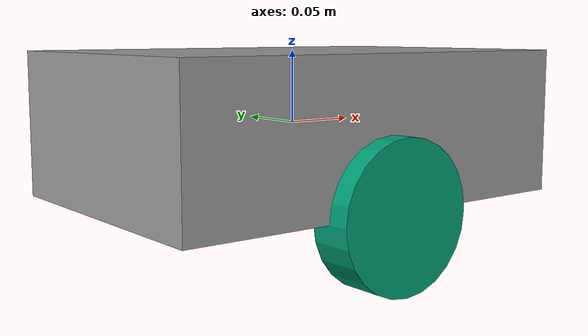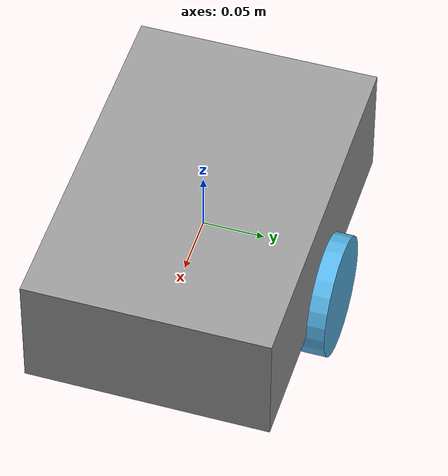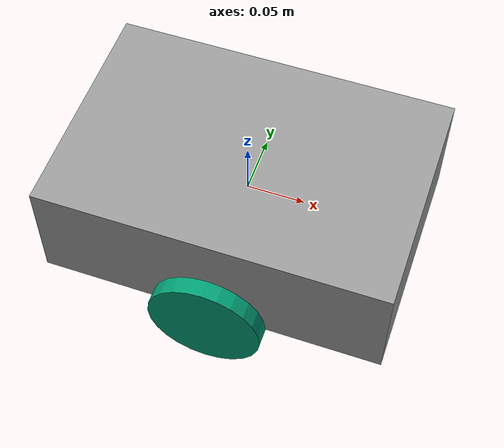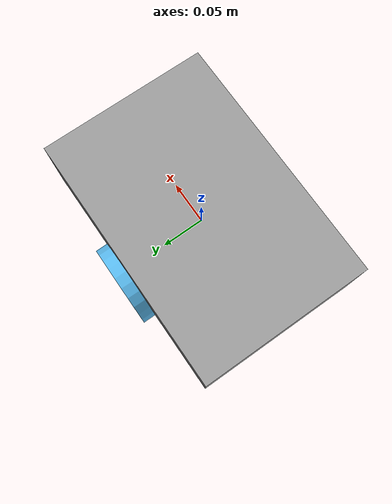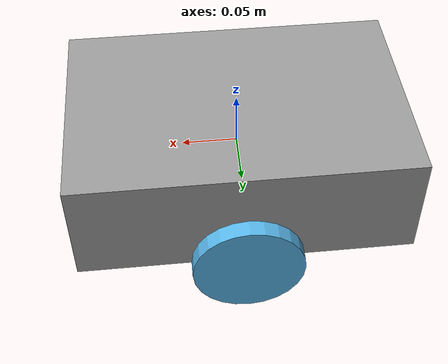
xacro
<?xml version="1.0"?>
<robot name="diff_bot" xmlns:xacro="http://www.ros.org/wiki/xacro">
  <xacro:arg name="use_ros2_control" default="false"/>
  <xacro:arg name="controllers_file" default="controllers.yaml"/>

  <link name="base_link">
    <visual>
      <geometry>
        <box size="0.30 0.20 0.10"/>
      </geometry>
      <material name="gray">
        <color rgba="0.6 0.6 0.6 1.0"/>
      </material>
    </visual>
    <collision>
      <geometry>
        <box size="0.30 0.20 0.10"/>
      </geometry>
    </collision>
    <inertial>
      <mass value="5.0"/>
      <origin xyz="0 0 0" rpy="0 0 0"/>
      <inertia ixx="0.020" ixy="0.0" ixz="0.0" iyy="0.040" iyz="0.0" izz="0.050"/>
    </inertial>
  </link>

  <link name="left_wheel_link">
    <visual>
      <origin xyz="0 0 0" rpy="1.5708 0 0"/>
      <geometry>
        <cylinder radius="0.05" length="0.03"/>
      </geometry>
    </visual>
    <collision>
      <origin xyz="0 0 0" rpy="1.5708 0 0"/>
      <geometry>
        <cylinder radius="0.05" length="0.03"/>
      </geometry>
    </collision>
    <inertial>
      <mass value="0.5"/>
      <origin xyz="0 0 0" rpy="0 0 0"/>
      <inertia ixx="0.001" ixy="0.0" ixz="0.0" iyy="0.001" iyz="0.0" izz="0.001"/>
    </inertial>
  </link>

  <link name="right_wheel_link">
    <visual>
      <origin xyz="0 0 0" rpy="1.5708 0 0"/>
      <geometry>
        <cylinder radius="0.05" length="0.03"/>
      </geometry>
    </visual>
    <collision>
      <origin xyz="0 0 0" rpy="1.5708 0 0"/>
      <geometry>
        <cylinder radius="0.05" length="0.03"/>
      </geometry>
    </collision>
    <inertial>
      <mass value="0.5"/>
      <origin xyz="0 0 0" rpy="0 0 0"/>
      <inertia ixx="0.001" ixy="0.0" ixz="0.0" iyy="0.001" iyz="0.0" izz="0.001"/>
    </inertial>
  </link>

  <joint name="left_wheel_joint" type="continuous">
    <parent link="base_link"/>
    <child link="left_wheel_link"/>
    <origin xyz="0.0 0.10 -0.05" rpy="0 0 0"/>
    <axis xyz="0 1 0"/>
  </joint>

  <joint name="right_wheel_joint" type="continuous">
    <parent link="base_link"/>
    <child link="right_wheel_link"/>
    <origin xyz="0.0 -0.10 -0.05" rpy="0 0 0"/>
    <axis xyz="0 1 0"/>
  </joint>

  <gazebo reference="base_link">
    <material>Gazebo/Gray</material>
  </gazebo>

  <xacro:if value="$(arg use_ros2_control)">
    <xacro:include filename="ros2_control.xacro"/>
    <xacro:ros2_control_system
      left_wheel_joint="left_wheel_joint"
      right_wheel_joint="right_wheel_joint"
      controllers_file="$(arg controllers_file)"/>
  </xacro:if>

  <xacro:unless value="$(arg use_ros2_control)">
    <xacro:include filename="gz_control.xacro"/>
    <xacro:gz_diff_drive
      left_wheel_joint="left_wheel_joint"
      right_wheel_joint="right_wheel_joint"
      odom_frame="odom"
      base_frame="base_link"/>
  </xacro:unless>
</robot>
